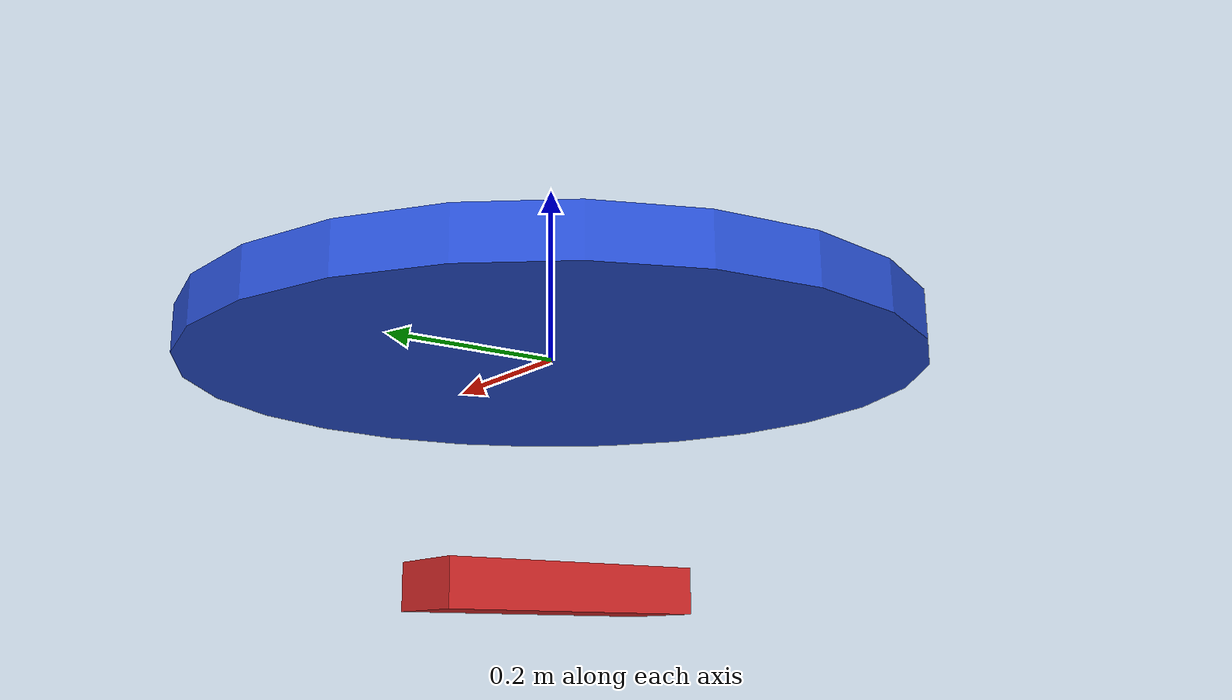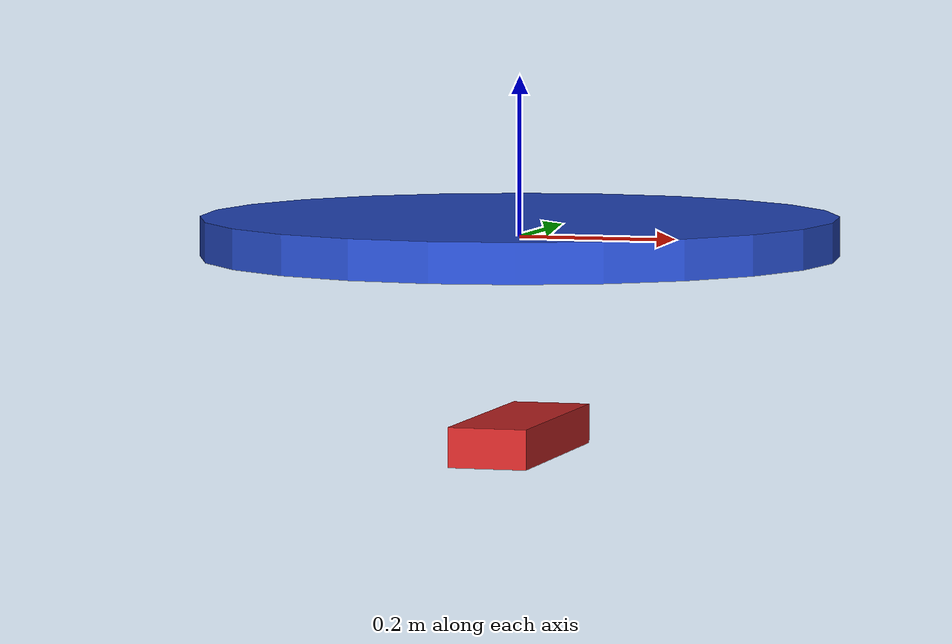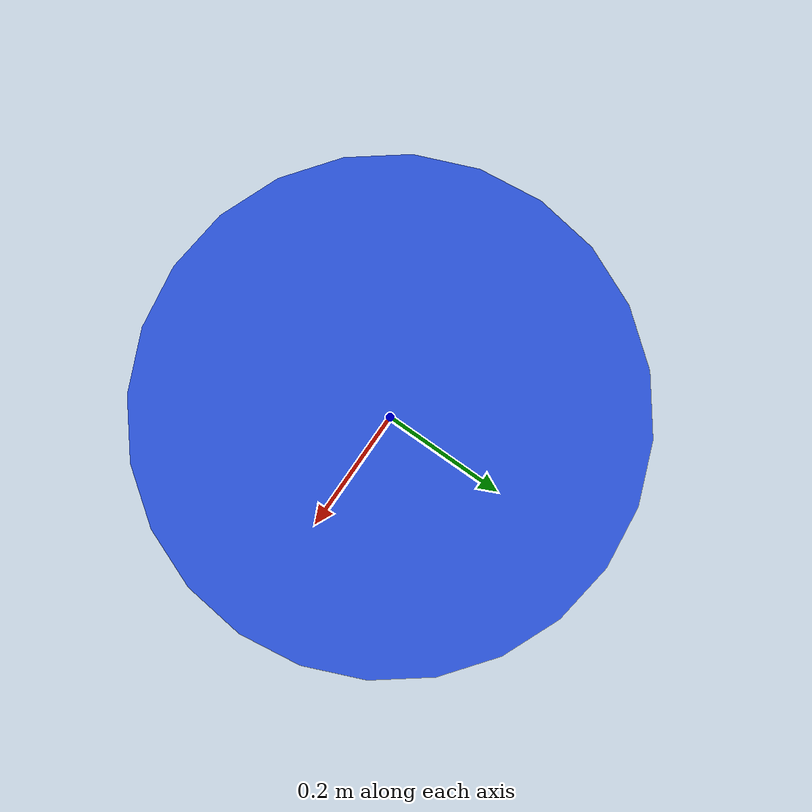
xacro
<?xml version="1.0"?>
<robot name="oscillating_flap" xmlns:xacro="http://ros.org/wiki/xacro">

  <!-- Base: the guard frame -->
  <link name="base_link">
    <inertial>
      <mass value="1.0"/>
      <origin xyz="0 0 0" />
      <inertia ixx="0.01" ixy="0" ixz="0" iyy="0.01" iyz="0" izz="0.01"/>
    </inertial>
    <visual>
      <geometry>
        <cylinder radius="0.4" length="0.05"/>
      </geometry>
      <material name="Blue"/>
    </visual>
    <collision>
      <geometry>
        <cylinder radius="0.4" length="0.05"/>
      </geometry>
    </collision>
  </link>

  <!-- Flapping body -->
  <link name="flap_link">
    <inertial>
      <mass value="0.2"/>
      <origin xyz="0 0 -0.2" />
      <inertia ixx="0.001" ixy="0" ixz="0" iyy="0.001" iyz="0" izz="0.001"/>
    </inertial>
    <visual>
      <geometry>
        <box size="0.1 0.3 0.05"/>
      </geometry>
      <origin xyz="0 0 -0.2" />
      <material name="Red"/>
    </visual>
    <collision>
      <geometry>
        <box size="0.1 0.3 0.05"/>
      </geometry>
      <origin xyz="0 0 -0.2" />
    </collision>
  </link>

  <!-- Spring-damper joint -->
  <joint name="flap_joint" type="revolute">
    <parent link="base_link"/>
    <child link="flap_link"/>
    <origin xyz="0 0 -0.05" rpy="0 0 0"/>
    <axis xyz="0 1 0"/>
    <limit lower="-1.57" upper="1.57" effort="10" velocity="10"/>
    <dynamics damping="0.5" friction="0.0"/>
  </joint>

  <!-- Gazebo-specific spring-damper parameters -->
  <gazebo reference="flap_joint">
    <spring_reference>0.0</spring_reference>
    <spring_stiffness>5.0</spring_stiffness>
    <damping>0.8</damping>
  </gazebo>
  <!-- IMU Link -->
  <link name="imu_link">
    <inertial>
      <mass value="0.001" />
      <origin xyz="0 0 0" rpy="0 0 0" />
      <inertia ixx="1e-6" iyy="1e-6" izz="1e-6" ixy="0" ixz="0" iyz="0" />
    </inertial>
  </link>

  <joint name="imu_joint" type="fixed">
    <parent link="base_link"/>
    <child link="imu_link"/>
    <origin xyz="0 0 0.05" rpy="0 0 0"/>
  </joint>

  <gazebo reference="imu_link">
    <gravity>true</gravity>
    <sensor name="imu_sensor" type="imu">
      <always_on>true</always_on>
      <update_rate>400</update_rate>
      <visualize>true</visualize>
      <topic>__default_topic__</topic>
      <plugin filename="libgazebo_ros_imu_sensor.so" name="imu_plugin">
        <topicName>imu/data</topicName>
        <bodyName>imu_link</bodyName>
        <updateRateHZ>400.0</updateRateHZ>
        <gaussianNoise>0.0</gaussianNoise>
        <xyzOffset>0 0 0</xyzOffset>
        <rpyOffset>0 0 0</rpyOffset>
        <frameName>imu_link</frameName>
        <initialOrientationAsReference>false</initialOrientationAsReference>
      </plugin>
      <pose>0 0 0 0 0 0</pose>
    </sensor>
  </gazebo>

  <!-- Camera Sensor -->
  <gazebo reference="base_link">
    <sensor name="camera_sensor" type="camera">
      <always_on>true</always_on>
      <update_rate>25</update_rate>
      <visualize>true</visualize>
      <camera>
        <horizontal_fov>1.39626</horizontal_fov> <!-- ~80 deg -->
        <image>
          <width>1280</width>
          <height>800</height>
          <format>R8G8B8</format>
        </image>
        <clip>
          <near>0.1</near>
          <far>500</far>
        </clip>
      </camera>
      <plugin name="camera_controller" filename="libgazebo_ros_camera.so">
        <cameraName>front_camera</cameraName>
        <imageTopicName>image_raw</imageTopicName>
        <cameraInfoTopicName>camera_info</cameraInfoTopicName>
        <frameName>base_link</frameName>
      </plugin>
    </sensor>
  </gazebo>

</robot>
